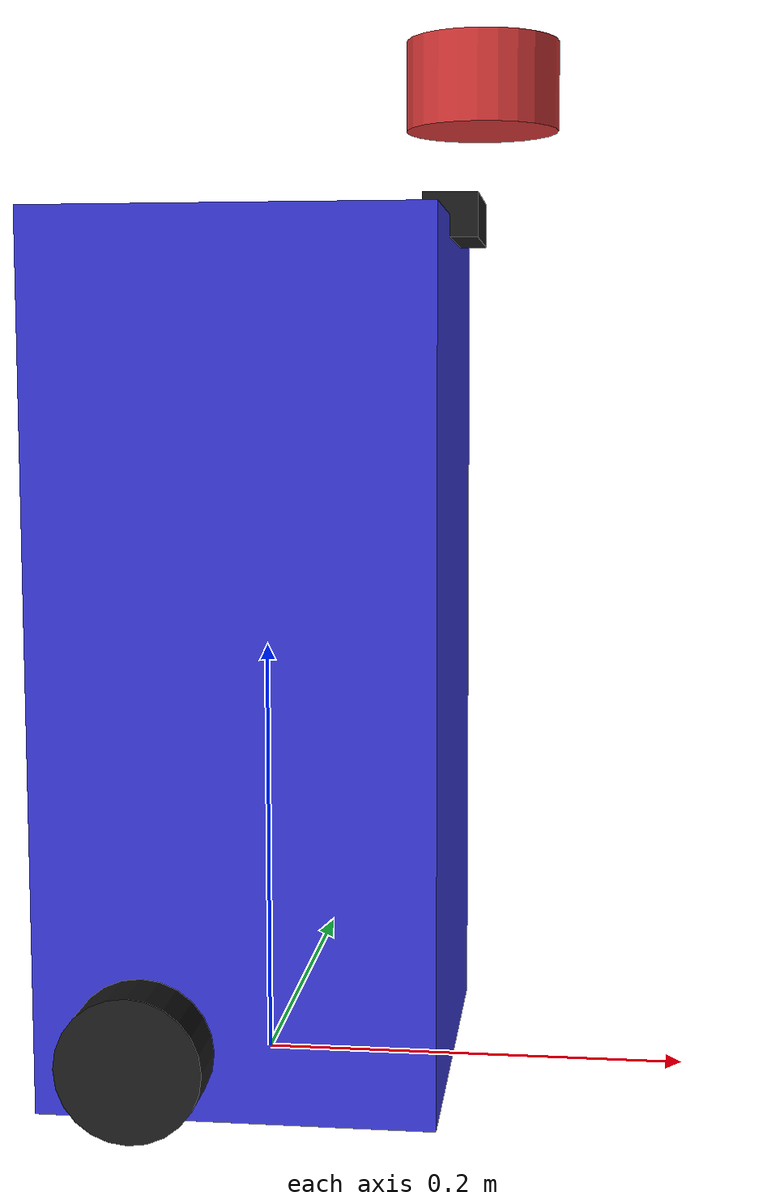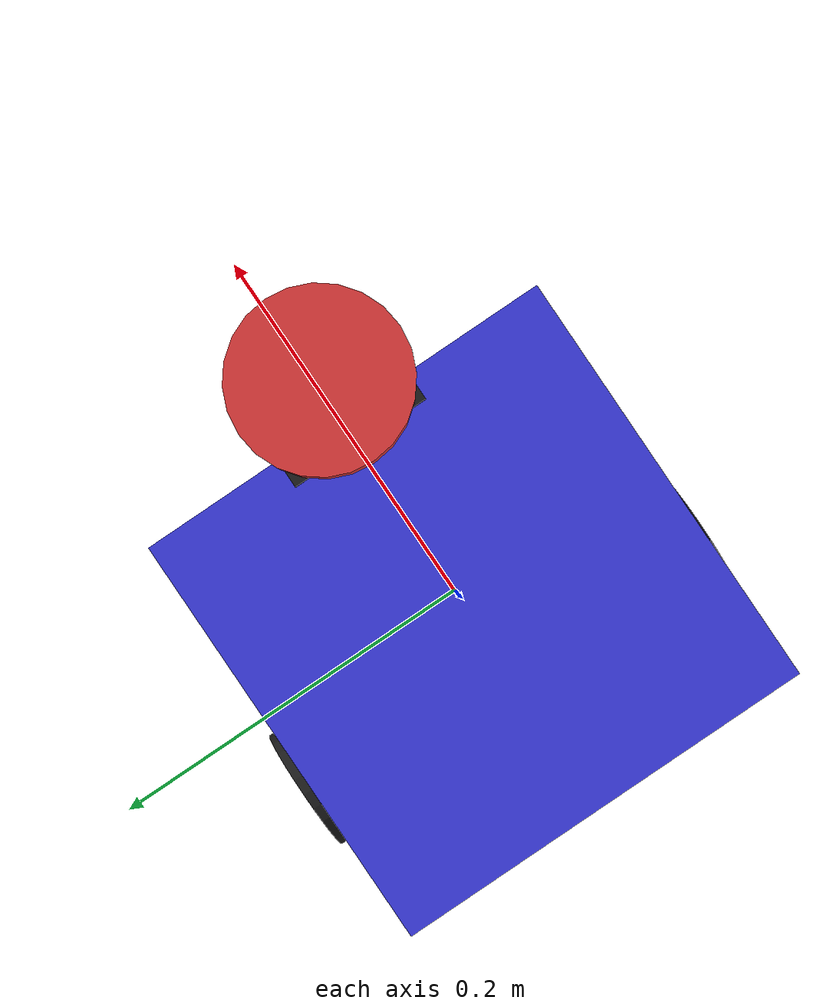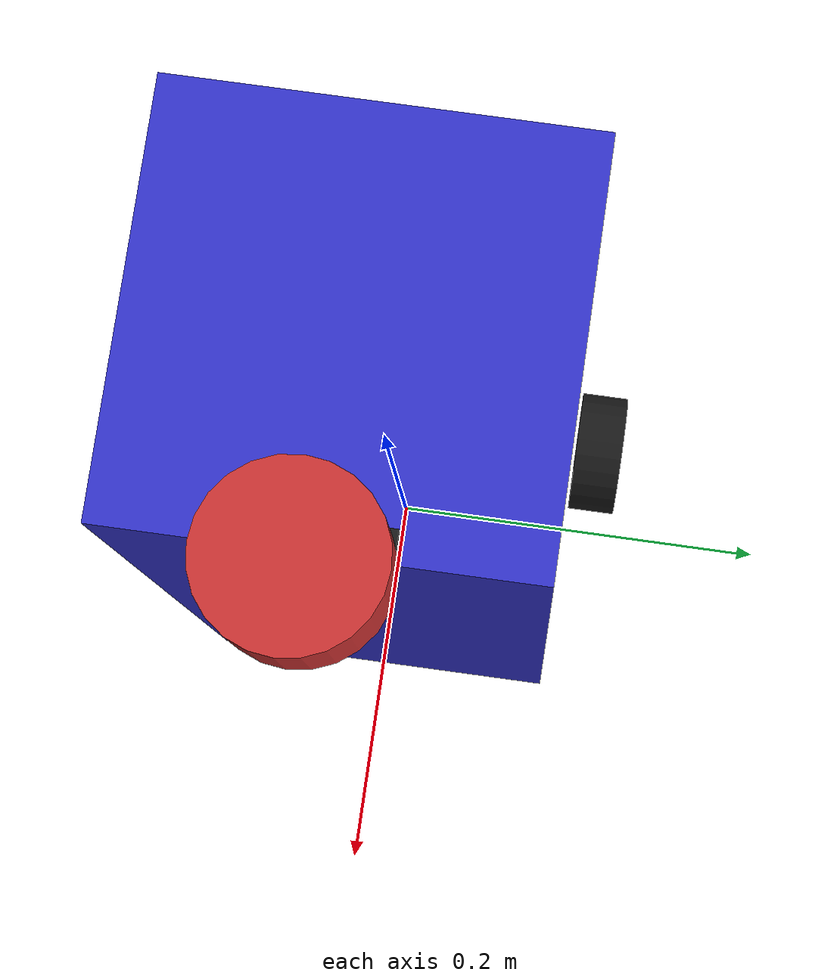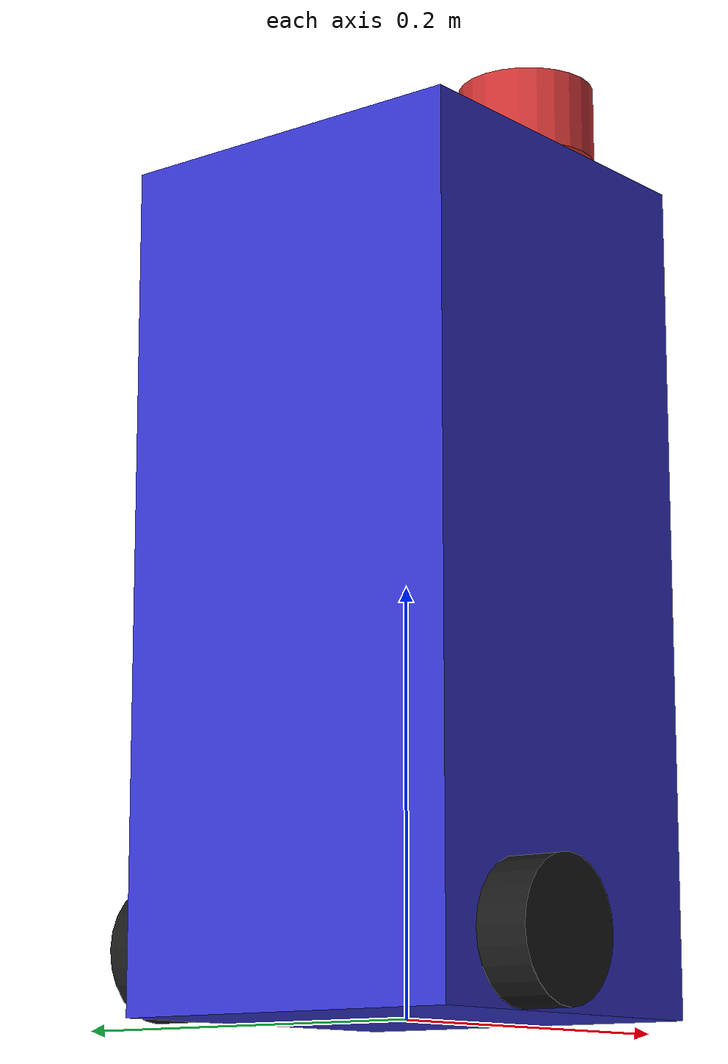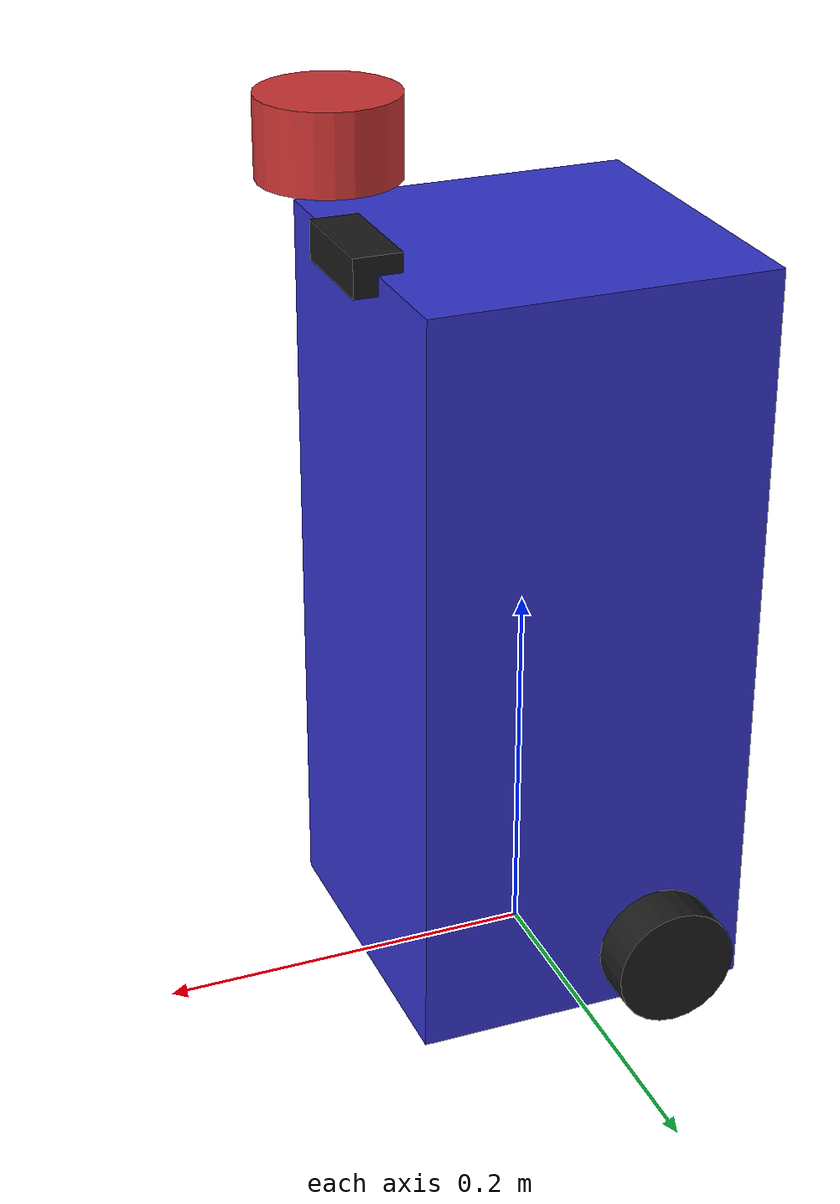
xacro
<?xml version="1.0"?>
<robot xmlns:xacro="http://www.ros.org/wiki/xacro" name="trash_bot">

  <!-- Constants -->
  <xacro:property name="PI" value="3.1415926535897931"/>

  <!-- Chassis properties -->
  <xacro:property name="chassis_length" value="0.18"/>
  <xacro:property name="chassis_width" value="0.18"/>
  <xacro:property name="chassis_height" value="0.40"/>
  <xacro:property name="chassis_mass" value="5.0"/>

  <!-- Wheel properties -->
  <xacro:property name="wheel_radius" value="0.0325"/>
  <xacro:property name="wheel_width" value="0.025"/>
  <xacro:property name="wheel_mass" value="0.15"/>

  <!-- Caster properties -->
  <xacro:property name="caster_radius" value="0.015"/>
  <xacro:property name="caster_mass" value="0.05"/>

  <!-- Colors -->
  <material name="blue">
    <color rgba="0.2 0.2 0.8 1.0"/>
  </material>

  <material name="black">
    <color rgba="0.1 0.1 0.1 1.0"/>
  </material>

  <material name="white">
    <color rgba="0.9 0.9 0.9 1.0"/>
  </material>

  <material name="red">
    <color rgba="0.8 0.2 0.2 1.0"/>
  </material>

  <!-- Macro for box inertia -->
  <xacro:macro name="box_inertia" params="m x y z">
    <inertia ixx="${m*(y*y+z*z)/12}" ixy="0" ixz="0"
             iyy="${m*(x*x+z*z)/12}" iyz="0"
             izz="${m*(x*x+y*y)/12}"/>
  </xacro:macro>

  <!-- Macro for cylinder inertia -->
  <xacro:macro name="cylinder_inertia" params="m r h">
    <inertia ixx="${m*(3*r*r+h*h)/12}" ixy="0" ixz="0"
             iyy="${m*(3*r*r+h*h)/12}" iyz="0"
             izz="${m*r*r/2}"/>
  </xacro:macro>

  <!-- Macro for sphere inertia -->
  <xacro:macro name="sphere_inertia" params="m r">
    <inertia ixx="${2*m*r*r/5}" ixy="0" ixz="0"
             iyy="${2*m*r*r/5}" iyz="0"
             izz="${2*m*r*r/5}"/>
  </xacro:macro>

  <!-- Base footprint - virtual link on ground -->
  <link name="base_footprint"/>

  <!-- Base link - origin at center of bottom face of chassis -->
  <link name="base_link">
    <visual>
      <origin xyz="0 0 ${chassis_height/2}" rpy="0 0 0"/>
      <geometry>
        <box size="${chassis_length} ${chassis_width} ${chassis_height}"/>
      </geometry>
      <material name="blue"/>
    </visual>

    <collision>
      <origin xyz="0 0 ${chassis_height/2}" rpy="0 0 0"/>
      <geometry>
        <box size="${chassis_length} ${chassis_width} ${chassis_height}"/>
      </geometry>
    </collision>

    <inertial>
      <origin xyz="0 0 ${chassis_height/2}" rpy="0 0 0"/>
      <mass value="${chassis_mass}"/>
      <xacro:box_inertia m="${chassis_mass}" x="${chassis_length}" y="${chassis_width}" z="${chassis_height}"/>
    </inertial>
  </link>

  <joint name="base_footprint_joint" type="fixed">
    <parent link="base_footprint"/>
    <child link="base_link"/>
    <origin xyz="0 0 0" rpy="0 0 0"/>
  </joint>

  <!-- Left Wheel -->
  <link name="left_wheel">
    <visual>
      <origin xyz="0 0 0" rpy="${PI/2} 0 0"/>
      <geometry>
        <cylinder radius="${wheel_radius}" length="${wheel_width}"/>
      </geometry>
      <material name="black"/>
    </visual>

    <collision>
      <origin xyz="0 0 0" rpy="${PI/2} 0 0"/>
      <geometry>
        <cylinder radius="${wheel_radius}" length="${wheel_width}"/>
      </geometry>
    </collision>

    <inertial>
      <origin xyz="0 0 0" rpy="${PI/2} 0 0"/>
      <mass value="${wheel_mass}"/>
      <xacro:cylinder_inertia m="${wheel_mass}" r="${wheel_radius}" h="${wheel_width}"/>
    </inertial>
  </link>

  <joint name="left_wheel_joint" type="continuous">
    <parent link="base_link"/>
    <child link="left_wheel"/>
    <origin xyz="-0.04 0.105 0.0325" rpy="0 0 0"/>
    <axis xyz="0 1 0"/>
    <dynamics damping="0.1" friction="0.1"/>
  </joint>

  <!-- Right Wheel -->
  <link name="right_wheel">
    <visual>
      <origin xyz="0 0 0" rpy="${PI/2} 0 0"/>
      <geometry>
        <cylinder radius="${wheel_radius}" length="${wheel_width}"/>
      </geometry>
      <material name="black"/>
    </visual>

    <collision>
      <origin xyz="0 0 0" rpy="${PI/2} 0 0"/>
      <geometry>
        <cylinder radius="${wheel_radius}" length="${wheel_width}"/>
      </geometry>
    </collision>

    <inertial>
      <origin xyz="0 0 0" rpy="${PI/2} 0 0"/>
      <mass value="${wheel_mass}"/>
      <xacro:cylinder_inertia m="${wheel_mass}" r="${wheel_radius}" h="${wheel_width}"/>
    </inertial>
  </link>

  <joint name="right_wheel_joint" type="continuous">
    <parent link="base_link"/>
    <child link="right_wheel"/>
    <origin xyz="-0.04 -0.105 0.0325" rpy="0 0 0"/>
    <axis xyz="0 1 0"/>
    <dynamics damping="0.1" friction="0.1"/>
  </joint>

  <!-- Caster Wheel -->
  <link name="caster_wheel">
    <visual>
      <origin xyz="0 0 0" rpy="0 0 0"/>
      <geometry>
        <sphere radius="${caster_radius}"/>
      </geometry>
      <material name="white"/>
    </visual>

    <collision>
      <origin xyz="0 0 0" rpy="0 0 0"/>
      <geometry>
        <sphere radius="${caster_radius}"/>
      </geometry>
    </collision>

    <inertial>
      <origin xyz="0 0 0" rpy="0 0 0"/>
      <mass value="${caster_mass}"/>
      <xacro:sphere_inertia m="${caster_mass}" r="${caster_radius}"/>
    </inertial>
  </link>

  <joint name="caster_wheel_joint" type="fixed">
    <parent link="base_link"/>
    <child link="caster_wheel"/>
    <origin xyz="0.07 0.0 0.045" rpy="0 0 0"/>
  </joint>

  <!-- Lidar -->
  <link name="lidar_link">
    <visual>
      <origin xyz="0 0 0" rpy="0 0 0"/>
      <geometry>
        <cylinder radius="0.035" length="0.04"/>
      </geometry>
      <material name="red"/>
    </visual>

    <collision>
      <origin xyz="0 0 0" rpy="0 0 0"/>
      <geometry>
        <cylinder radius="0.035" length="0.04"/>
      </geometry>
    </collision>

    <inertial>
      <origin xyz="0 0 0" rpy="0 0 0"/>
      <mass value="0.15"/>
      <xacro:cylinder_inertia m="0.15" r="0.035" h="0.04"/>
    </inertial>
  </link>

  <joint name="lidar_joint" type="fixed">
    <parent link="base_link"/>
    <child link="lidar_link"/>
    <origin xyz="0.1025 0.0 0.46" rpy="0 0 0"/>
  </joint>

  <!-- Camera -->
  <link name="camera_link">
    <visual>
      <origin xyz="0 0 0" rpy="0 0 0"/>
      <geometry>
        <box size="0.025 0.06 0.02"/>
      </geometry>
      <material name="black"/>
    </visual>

    <collision>
      <origin xyz="0 0 0" rpy="0 0 0"/>
      <geometry>
        <box size="0.025 0.06 0.02"/>
      </geometry>
    </collision>

    <inertial>
      <origin xyz="0 0 0" rpy="0 0 0"/>
      <mass value="0.05"/>
      <xacro:box_inertia m="0.05" x="0.025" y="0.06" z="0.02"/>
    </inertial>
  </link>

  <joint name="camera_joint" type="fixed">
    <parent link="base_link"/>
    <child link="camera_link"/>
    <!-- Position at top front of chassis, pointing in +X direction -->
    <origin xyz="0.09 0.0 ${chassis_height}" rpy="0 0 0"/>
  </joint>

  <!-- Camera optical frame (standard ROS convention) -->
  <link name="camera_optical_link"/>

  <joint name="camera_optical_joint" type="fixed">
    <parent link="camera_link"/>
    <child link="camera_optical_link"/>
    <!-- Optical frame: X right, Y down, Z forward -->
    <origin xyz="0 0 0" rpy="${-PI/2} 0 ${-PI/2}"/>
  </joint>

  <!-- Gazebo-specific elements -->
  <gazebo reference="base_link">
    <material>Gazebo/Blue</material>
    <mu1>0.1</mu1>
    <mu2>0.1</mu2>
  </gazebo>

  <gazebo reference="left_wheel">
    <material>Gazebo/Black</material>
    <mu1>1.0</mu1>
    <mu2>1.0</mu2>
    <kp>1000000.0</kp>
    <kd>100.0</kd>
    <minDepth>0.001</minDepth>
    <maxVel>1.0</maxVel>
  </gazebo>

  <gazebo reference="right_wheel">
    <material>Gazebo/Black</material>
    <mu1>1.0</mu1>
    <mu2>1.0</mu2>
    <kp>1000000.0</kp>
    <kd>100.0</kd>
    <minDepth>0.001</minDepth>
    <maxVel>1.0</maxVel>
  </gazebo>

  <gazebo reference="caster_wheel">
    <material>Gazebo/White</material>
    <mu1>0.01</mu1>
    <mu2>0.01</mu2>
    <kp>1000000.0</kp>
    <kd>100.0</kd>
    <minDepth>0.001</minDepth>
  </gazebo>

  <gazebo reference="lidar_link">
    <material>Gazebo/Red</material>
    <sensor name="lidar_sensor" type="ray">
      <always_on>true</always_on>
      <visualize>true</visualize>
      <update_rate>10</update_rate>
      <ray>
        <scan>
          <horizontal>
            <samples>360</samples>
            <resolution>1.0</resolution>
            <min_angle>0.0</min_angle>
            <max_angle>6.28</max_angle>
          </horizontal>
        </scan>
        <range>
          <min>0.15</min>
          <max>12.0</max>
          <resolution>0.01</resolution>
        </range>
        <noise>
          <type>gaussian</type>
          <mean>0.0</mean>
          <stddev>0.01</stddev>
        </noise>
      </ray>
      <plugin name="scan" filename="libgazebo_ros_ray_sensor.so">
        <ros>
          <remapping>~/out:=scan</remapping>
        </ros>
        <output_type>sensor_msgs/LaserScan</output_type>
        <frame_name>lidar_link</frame_name>
      </plugin>
    </sensor>
  </gazebo>

  <gazebo reference="camera_link">
    <material>Gazebo/Black</material>
    <sensor name="camera_sensor" type="camera">
      <always_on>true</always_on>
      <visualize>true</visualize>
      <update_rate>30</update_rate>
      <camera name="camera">
        <horizontal_fov>1.089</horizontal_fov>
        <image>
          <width>640</width>
          <height>480</height>
          <format>R8G8B8</format>
        </image>
        <clip>
          <near>0.05</near>
          <far>8.0</far>
        </clip>
        <noise>
          <type>gaussian</type>
          <mean>0.0</mean>
          <stddev>0.007</stddev>
        </noise>
      </camera>
      <plugin name="camera_controller" filename="libgazebo_ros_camera.so">
        <ros>
          <remapping>~/image_raw:=camera/image_raw</remapping>
          <remapping>~/camera_info:=camera/camera_info</remapping>
        </ros>
        <camera_name>camera</camera_name>
        <frame_name>camera_optical_link</frame_name>
      </plugin>
    </sensor>
  </gazebo>

  <!-- Differential Drive Plugin -->
  <gazebo>
    <plugin name="diff_drive" filename="libgazebo_ros_diff_drive.so">
      <ros>
        <namespace>/</namespace>
        <remapping>cmd_vel:=cmd_vel</remapping>
        <remapping>odom:=odom</remapping>
      </ros>

      <!-- Wheels -->
      <left_joint>left_wheel_joint</left_joint>
      <right_joint>right_wheel_joint</right_joint>

      <!-- Kinematics -->
      <wheel_separation>0.21</wheel_separation>
      <wheel_diameter>0.065</wheel_diameter>

      <!-- Limits -->
      <max_wheel_torque>2.0</max_wheel_torque>
      <max_wheel_acceleration>1.0</max_wheel_acceleration>

      <!-- Output -->
      <publish_odom>true</publish_odom>
      <publish_odom_tf>true</publish_odom_tf>
      <publish_wheel_tf>false</publish_wheel_tf>

      <odometry_frame>odom</odometry_frame>
      <robot_base_frame>base_footprint</robot_base_frame>

      <update_rate>50</update_rate>
    </plugin>
  </gazebo>

</robot>
